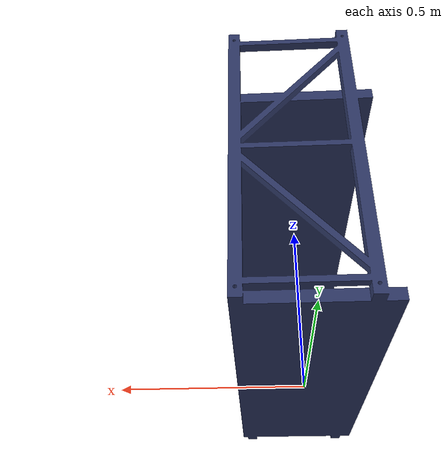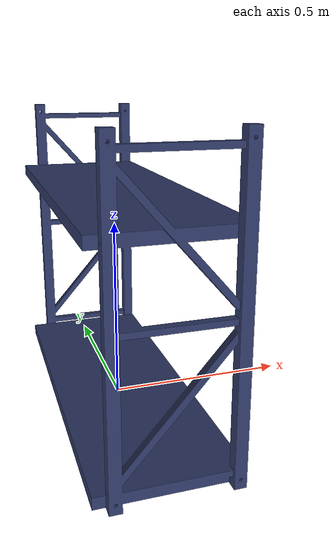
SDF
<?xml version="1.0" ?>
<sdf version="1.6">
  <model name="warehouse_rack">
    <static>true</static>
    <link name="link">

      <visual name="visual">
        <pose>0.18 0.405 0 0 0 0</pose>
        <geometry>
          <mesh>
            <uri>model://puzzlebot_description/meshes/full_rack.stl</uri>
            <scale>0.03 0.03 0.03</scale>
          </mesh>
        </geometry>
        <material>
          <ambient>0.18 0.22 0.40 1</ambient>
          <diffuse>0.18 0.22 0.40 1</diffuse>
          <specular>0.40 0.40 0.45 1</specular>
        </material>
      </visual>

      <collision name="collision">
        <pose>0 0 0.3975 0 0 0</pose>
        <geometry>
          <box><size>0.36 1.05 0.795</size></box>
        </geometry>
      </collision>

    </link>
  </model>
</sdf>
